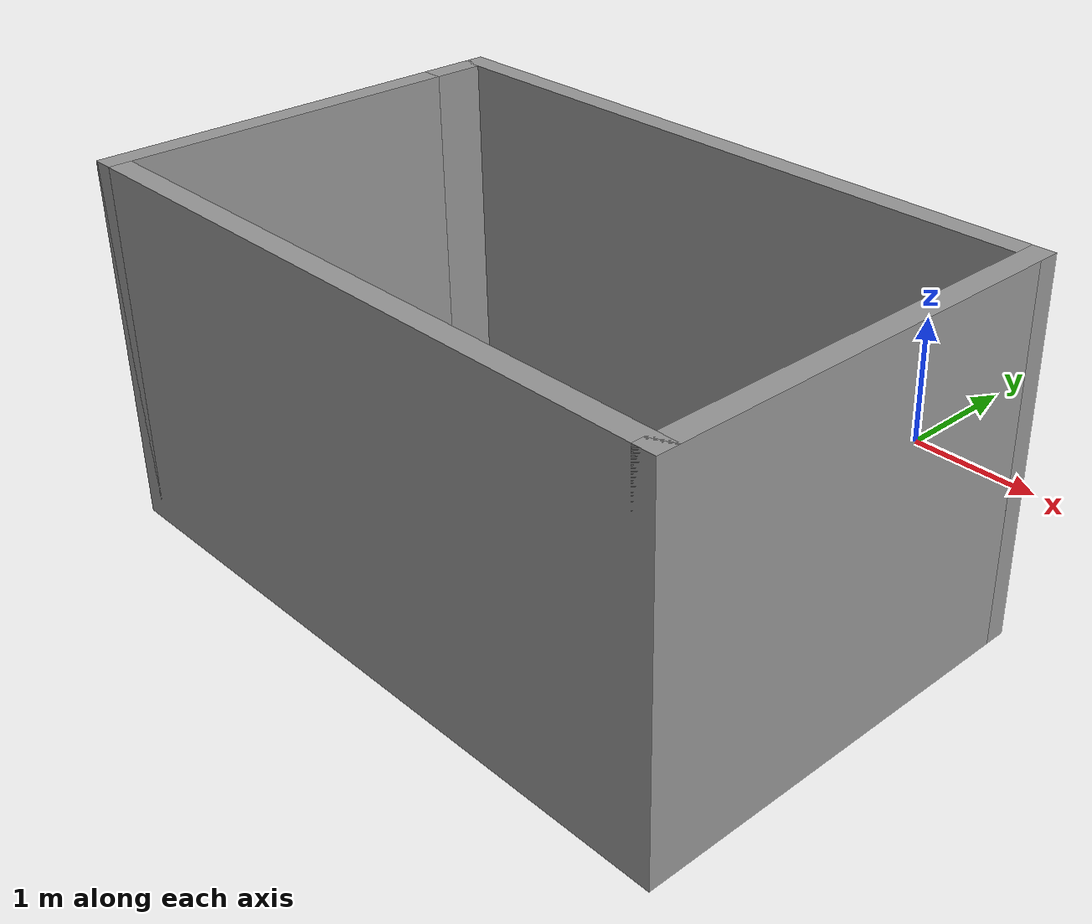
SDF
<?xml version='1.0'?>
<sdf version='1.7'>
  <model name='room3'>
    <pose>-0.64 -2.2325 0 0 -0 0</pose>
    <link name='Wall_0'>
      <collision name='Wall_0_Collision'>
        <geometry>
          <box>
            <size>2.5 0.15 2.5</size>
          </box>
        </geometry>
        <pose>0 0 1.25 0 -0 0</pose>
      </collision>
      <visual name='Wall_0_Visual'>
        <pose>0 0 1.25 0 -0 0</pose>
        <geometry>
          <box>
            <size>2.5 0.15 2.5</size>
          </box>
        </geometry>
        <material>
          <script>
            <uri>file://media/materials/scripts/gazebo.material</uri>
            <name>Gazebo/Grey</name>
          </script>
          <ambient>1 1 1 1</ambient>
        </material>
        <meta>
          <layer>0</layer>
        </meta>
      </visual>
      <pose>-2.3 -0.9825 0 0 -0 -1.5708</pose>
    </link>
    <link name='Wall_1'>
      <collision name='Wall_1_Collision'>
        <geometry>
          <box>
            <size>4.75 0.15 2.5</size>
          </box>
        </geometry>
        <pose>0 0 1.25 0 -0 0</pose>
      </collision>
      <visual name='Wall_1_Visual'>
        <pose>0 0 1.25 0 -0 0</pose>
        <geometry>
          <box>
            <size>4.75 0.15 2.5</size>
          </box>
        </geometry>
        <material>
          <script>
            <uri>file://media/materials/scripts/gazebo.material</uri>
            <name>Gazebo/Grey</name>
          </script>
          <ambient>1 1 1 1</ambient>
        </material>
        <meta>
          <layer>0</layer>
        </meta>
      </visual>
      <pose>0 -2.1575 0 0 -0 0</pose>
    </link>
    <link name='Wall_2'>
      <collision name='Wall_2_Collision'>
        <geometry>
          <box>
            <size>3 0.15 2.5</size>
          </box>
        </geometry>
        <pose>0 0 1.25 0 -0 0</pose>
      </collision>
      <visual name='Wall_2_Visual'>
        <pose>0 0 1.25 0 -0 0</pose>
        <geometry>
          <box>
            <size>3 0.15 2.5</size>
          </box>
        </geometry>
        <material>
          <script>
            <uri>file://media/materials/scripts/gazebo.material</uri>
            <name>Gazebo/Grey</name>
          </script>
          <ambient>1 1 1 1</ambient>
        </material>
        <meta>
          <layer>0</layer>
        </meta>
      </visual>
      <pose>2.3 -0.7325 0 0 -0 1.5708</pose>
    </link>
    <link name='Wall_3'>
      <collision name='Wall_3_Collision'>
        <geometry>
          <box>
            <size>4.75 0.15 2.5</size>
          </box>
        </geometry>
        <pose>0 0 1.25 0 -0 0</pose>
      </collision>
      <visual name='Wall_3_Visual'>
        <pose>0 0 1.25 0 -0 0</pose>
        <geometry>
          <box>
            <size>4.75 0.15 2.5</size>
          </box>
        </geometry>
        <material>
          <script>
            <uri>file://media/materials/scripts/gazebo.material</uri>
            <name>Gazebo/Grey</name>
          </script>
          <ambient>1 1 1 1</ambient>
        </material>
        <meta>
          <layer>0</layer>
        </meta>
      </visual>
      <pose>0 0.6925 0 0 -0 3.14159</pose>
    </link>
    <link name='Wall_4'>
      <collision name='Wall_4_Collision'>
        <geometry>
          <box>
            <size>0.65 0.15 2.5</size>
          </box>
        </geometry>
        <pose>0 0 1.25 0 -0 0</pose>
      </collision>
      <visual name='Wall_4_Visual'>
        <pose>0 0 1.25 0 -0 0</pose>
        <geometry>
          <box>
            <size>0.65 0.15 2.5</size>
          </box>
        </geometry>
        <material>
          <script>
            <uri>file://media/materials/scripts/gazebo.material</uri>
            <name>Gazebo/Grey</name>
          </script>
          <ambient>1 1 1 1</ambient>
        </material>
        <meta>
          <layer>0</layer>
        </meta>
      </visual>
      <pose>-2.3 0.4425 0 0 -0 -1.5708</pose>
    </link>
    <static>1</static>
  </model>
</sdf>
